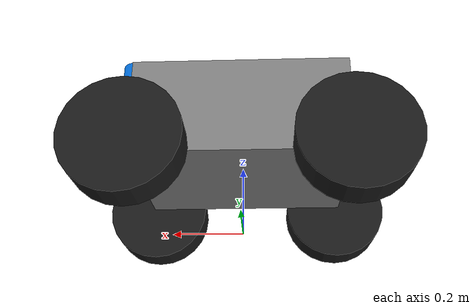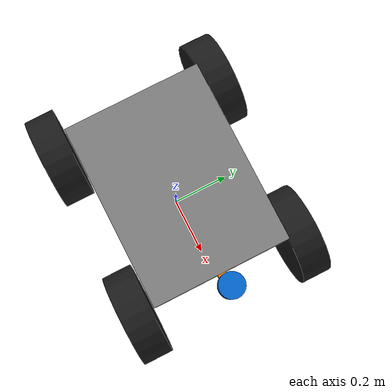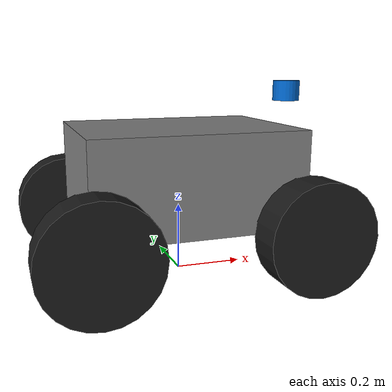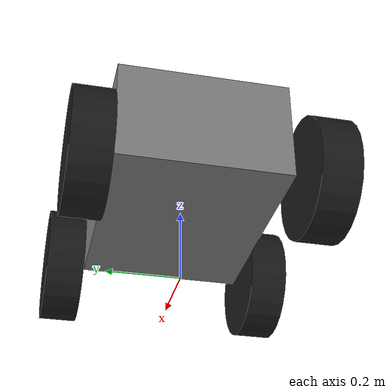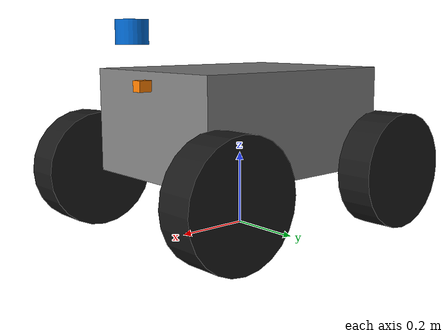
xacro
<?xml version="1.0"?>
<robot xmlns:xacro="http://www.ros.org/wiki/xacro" name="my_ugv">

  <!-- ===== CONSTANTS ===== -->
  <xacro:property name="wheel_radius"   value="0.15875"/>    <!-- 6.25 in -->
  <xacro:property name="wheel_length"   value="0.1016"/>     <!-- 4 in width -->
  <xacro:property name="track_width"    value="0.5874"/>     <!-- 23.125 in avg -->
  <xacro:property name="half_track"     value="0.2937"/>
  <xacro:property name="wheelbase"      value="0.59055"/>    <!-- 23.25 in -->
  <xacro:property name="half_wb"        value="0.29528"/>

  <xacro:property name="body_length"    value="0.6096"/>     <!-- 24 in -->
  <xacro:property name="body_width"     value="0.4572"/>     <!-- 18 in -->
  <xacro:property name="body_height"    value="0.2794"/>     <!-- 11 in -->

  <xacro:property name="caster_radius"  value="0.05"/>
  <xacro:property name="pi"             value="3.14159265358979"/>

  <!-- ===== MATERIALS ===== -->
  <material name="black">   <color rgba="0.1 0.1 0.1 1.0"/> </material>
  <material name="white">   <color rgba="0.9 0.9 0.9 1.0"/> </material>
  <material name="gray">    <color rgba="0.5 0.5 0.5 1.0"/> </material>
  <material name="blue">    <color rgba="0.0 0.4 0.8 1.0"/> </material>
  <material name="red">     <color rgba="0.8 0.1 0.1 1.0"/> </material>
  <material name="green">   <color rgba="0.0 0.7 0.0 1.0"/> </material>
  <material name="orange">  <color rgba="1.0 0.5 0.0 1.0"/> </material>

  <!-- ===== WHEEL MACRO ===== -->
  <xacro:macro name="wheel" params="name x y">
    <link name="${name}_wheel">
      <visual>
        <origin xyz="0 0 0" rpy="${pi/2} 0 0"/>
        <geometry>
          <cylinder radius="${wheel_radius}" length="${wheel_length}"/>
        </geometry>
        <material name="black"/>
      </visual>
      <collision>
        <origin xyz="0 0 0" rpy="${pi/2} 0 0"/>
        <geometry>
          <cylinder radius="${wheel_radius}" length="${wheel_length}"/>
        </geometry>
      </collision>
      <inertial>
        <origin xyz="0 0 0" rpy="${pi/2} 0 0"/>
        <mass value="1.5"/>
        <inertia
          ixx="${(1.0/12.0)*1.5*(3*wheel_radius*wheel_radius + wheel_length*wheel_length)}"
          iyy="${(1.0/12.0)*1.5*(3*wheel_radius*wheel_radius + wheel_length*wheel_length)}"
          izz="${0.5*1.5*wheel_radius*wheel_radius}"
          ixy="0" ixz="0" iyz="0"/>
      </inertial>
    </link>

    <joint name="${name}_wheel_joint" type="continuous">
      <parent link="base_link"/>
      <child  link="${name}_wheel"/>
      <origin xyz="${x} ${y} 0" rpy="0 0 0"/>
      <axis xyz="0 1 0"/>
      <dynamics damping="0.1" friction="0.1"/>
    </joint>

    <gazebo reference="${name}_wheel">
      <material>Gazebo/DarkGray</material>
      <mu1>0.8</mu1>
      <mu2>0.8</mu2>
    </gazebo>
  </xacro:macro>

  <!-- ===== BASE FOOTPRINT ===== -->
  <link name="base_footprint"/>

  <joint name="base_footprint_joint" type="fixed">
    <parent link="base_footprint"/>
    <child  link="base_link"/>
    <origin xyz="0 0 ${wheel_radius}" rpy="0 0 0"/>
  </joint>

  <!-- ===== BASE LINK ===== -->
  <!-- base_link is at the drive axle midpoint at ground level (z=0 in footprint frame = wheel_radius height) -->
  <link name="base_link">
    <inertial>
      <origin xyz="0 0 ${body_height/2}" rpy="0 0 0"/>
      <mass value="34.0"/>
      <inertia
        ixx="${(1.0/12.0)*34.0*(body_width*body_width + body_height*body_height)}"
        iyy="${(1.0/12.0)*34.0*(body_length*body_length + body_height*body_height)}"
        izz="${(1.0/12.0)*34.0*(body_length*body_length + body_width*body_width)}"
        ixy="0" ixz="0" iyz="0"/>
    </inertial>
  </link>

  <!-- ===== CHASSIS ===== -->
  <link name="chassis">
    <visual>
      <origin xyz="0 0 ${body_height/2}" rpy="0 0 0"/>
      <geometry>
        <box size="${body_length} ${body_width} ${body_height}"/>
      </geometry>
      <material name="gray"/>
    </visual>
    <collision>
      <origin xyz="0 0 ${body_height/2}" rpy="0 0 0"/>
      <geometry>
        <box size="${body_length} ${body_width} ${body_height}"/>
      </geometry>
    </collision>
    <inertial>
      <origin xyz="0 0 ${body_height/2}" rpy="0 0 0"/>
      <mass value="20.0"/>
      <inertia
        ixx="${(1.0/12.0)*20.0*(body_width*body_width + body_height*body_height)}"
        iyy="${(1.0/12.0)*20.0*(body_length*body_length + body_height*body_height)}"
        izz="${(1.0/12.0)*20.0*(body_length*body_length + body_width*body_width)}"
        ixy="0" ixz="0" iyz="0"/>
    </inertial>
  </link>

  <joint name="chassis_joint" type="fixed">
    <parent link="base_link"/>
    <child  link="chassis"/>
    <origin xyz="0 0 0" rpy="0 0 0"/>
  </joint>

  <gazebo reference="chassis">
    <material>Gazebo/Gray</material>
  </gazebo>

  <!-- ===== WHEELS ===== -->
  <!-- Front-left, front-right, rear-left, rear-right -->
  <xacro:wheel name="front_left"  x="${half_wb}"  y="${half_track}"/>
  <xacro:wheel name="front_right" x="${half_wb}"  y="-${half_track}"/>
  <xacro:wheel name="rear_left"   x="-${half_wb}" y="${half_track}"/>
  <xacro:wheel name="rear_right"  x="-${half_wb}" y="-${half_track}"/>

  <!-- ===== LIDAR FRAME ===== -->
  <!-- x=+0.349m, y=0, z=+0.375m relative to base_link -->
  <link name="laser_frame">
    <visual>
      <origin xyz="0 0 0" rpy="0 0 0"/>
      <geometry>
        <cylinder radius="0.04" length="0.06"/>
      </geometry>
      <material name="blue"/>
    </visual>
    <collision>
      <origin xyz="0 0 0" rpy="0 0 0"/>
      <geometry>
        <cylinder radius="0.04" length="0.06"/>
      </geometry>
    </collision>
    <inertial>
      <mass value="0.2"/>
      <inertia ixx="0.0001" iyy="0.0001" izz="0.0001" ixy="0" ixz="0" iyz="0"/>
    </inertial>
  </link>

  <joint name="laser_joint" type="fixed">
    <parent link="base_link"/>
    <child  link="laser_frame"/>
    <origin xyz="0.349 0 0.375" rpy="0 0 0"/>
  </joint>

  <gazebo reference="laser_frame">
    <material>Gazebo/Blue</material>
    <sensor name="lidar" type="ray">
      <always_on>true</always_on>
      <visualize>true</visualize>
      <update_rate>10</update_rate>
      <ray>
        <scan>
          <horizontal>
            <samples>360</samples>
            <resolution>1</resolution>
            <min_angle>-3.14159</min_angle>
            <max_angle>3.14159</max_angle>
          </horizontal>
        </scan>
        <range>
          <min>0.15</min>
          <max>12.0</max>
          <resolution>0.01</resolution>
        </range>
      </ray>
      <plugin name="scan" filename="libgazebo_ros_ray_sensor.so">
        <ros>
          <remapping>~/out:=scan</remapping>
        </ros>
        <output_type>sensor_msgs/LaserScan</output_type>
        <frame_name>laser_frame</frame_name>
      </plugin>
    </sensor>
  </gazebo>

  <!-- ===== CAMERA LINK (OAK-D S2) ===== -->
  <!-- x=+0.292m, y=0, z=+0.244m relative to base_link -->
  <link name="camera_link">
    <visual>
      <origin xyz="0 0 0" rpy="0 0 0"/>
      <geometry>
        <box size="0.097 0.029 0.028"/>
      </geometry>
      <material name="orange"/>
    </visual>
    <collision>
      <origin xyz="0 0 0" rpy="0 0 0"/>
      <geometry>
        <box size="0.097 0.029 0.028"/>
      </geometry>
    </collision>
    <inertial>
      <mass value="0.072"/>
      <inertia ixx="0.00001" iyy="0.00001" izz="0.00001" ixy="0" ixz="0" iyz="0"/>
    </inertial>
  </link>

  <joint name="camera_joint" type="fixed">
    <parent link="base_link"/>
    <child  link="camera_link"/>
    <origin xyz="0.292 0 0.244" rpy="0 0 0"/>
  </joint>

  <gazebo reference="camera_link">
    <material>Gazebo/Orange</material>
  </gazebo>

  <!-- OAK-D optical frame (z forward, x right, y down — ROS camera convention) -->
  <link name="camera_optical_link"/>

  <joint name="camera_optical_joint" type="fixed">
    <parent link="camera_link"/>
    <child  link="camera_optical_link"/>
    <origin xyz="0 0 0" rpy="-1.5707963 0 -1.5707963"/>
  </joint>

  <!-- ===== IMU LINK (OAK-D S2 IMU — coincident with camera) ===== -->
  <link name="imu_link"/>

  <joint name="imu_joint" type="fixed">
    <parent link="camera_link"/>
    <child  link="imu_link"/>
    <origin xyz="0 0 0" rpy="0 0 0"/>
  </joint>

  <!-- ===== ROS2 CONTROL (DiffDrive — mock for now) ===== -->
  <ros2_control name="ugv_ros2_control" type="system">
    <hardware>
      <plugin>mock_components/GenericSystem</plugin>
    </hardware>
    <joint name="front_left_wheel_joint">
      <command_interface name="velocity"/>
      <state_interface name="velocity"/>
      <state_interface name="position"/>
    </joint>
    <joint name="front_right_wheel_joint">
      <command_interface name="velocity"/>
      <state_interface name="velocity"/>
      <state_interface name="position"/>
    </joint>
    <joint name="rear_left_wheel_joint">
      <command_interface name="velocity"/>
      <state_interface name="velocity"/>
      <state_interface name="position"/>
    </joint>
    <joint name="rear_right_wheel_joint">
      <command_interface name="velocity"/>
      <state_interface name="velocity"/>
      <state_interface name="position"/>
    </joint>
  </ros2_control>

</robot>
